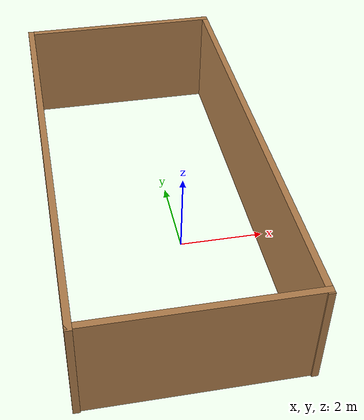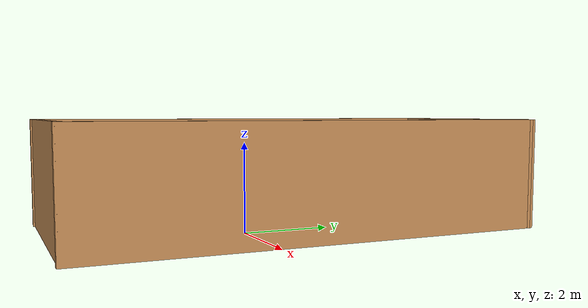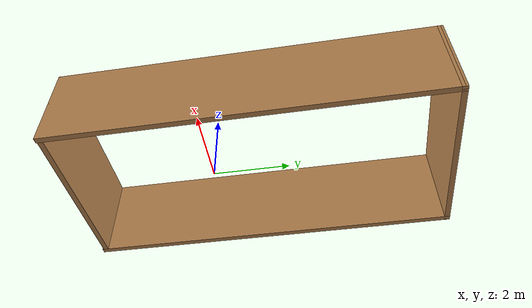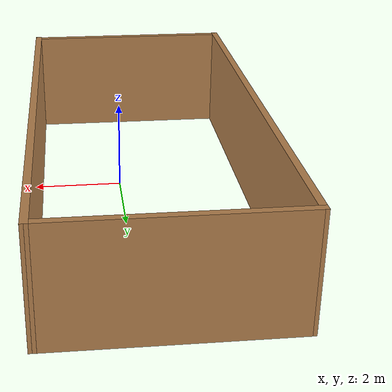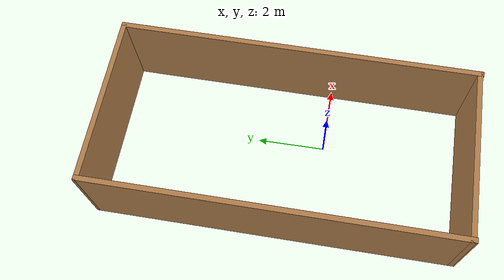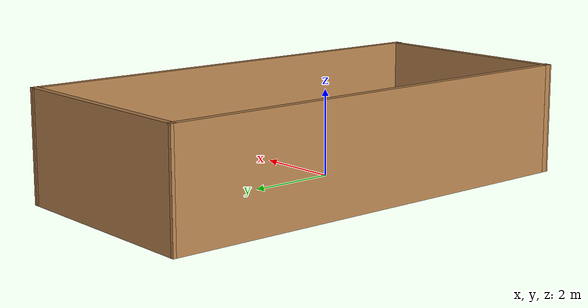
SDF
<?xml version='1.0'?>
<sdf version='1.7'>
  <model name='Untitled'>
    <pose>-0.51238 1.07778 0 0 -0 0</pose>
    <link name='Wall_0'>
      <collision name='Wall_0_Collision'>
        <geometry>
          <box>
            <size>10.5224 0.15 2.5</size>
          </box>
        </geometry>
        <pose>0 0 1.25 0 -0 0</pose>
      </collision>
      <visual name='Wall_0_Visual'>
        <pose>0 0 1.25 0 -0 0</pose>
        <geometry>
          <box>
            <size>10.5224 0.15 2.5</size>
          </box>
        </geometry>
        <material>
          <script>
            <uri>file://media/materials/scripts/gazebo.material</uri>
            <name>Gazebo/Wood</name>
          </script>
          <ambient>1 1 1 1</ambient>
        </material>
        <meta>
          <layer>0</layer>
        </meta>
      </visual>
      <pose>-2.42499 0.006101 0 0 -0 1.56552</pose>
    </link>
    <link name='Wall_1'>
      <collision name='Wall_1_Collision'>
        <geometry>
          <box>
            <size>5 0.15 2.5</size>
          </box>
        </geometry>
        <pose>0 0 1.25 0 -0 0</pose>
      </collision>
      <visual name='Wall_1_Visual'>
        <pose>0 0 1.25 0 -0 0</pose>
        <geometry>
          <box>
            <size>5 0.15 2.5</size>
          </box>
        </geometry>
        <material>
          <script>
            <uri>file://media/materials/scripts/gazebo.material</uri>
            <name>Gazebo/Wood</name>
          </script>
          <ambient>1 1 1 1</ambient>
        </material>
        <meta>
          <layer>0</layer>
        </meta>
      </visual>
      <pose>0.027373 5.18612 0 0 -0 -0.002516</pose>
    </link>
    <link name='Wall_2'>
      <collision name='Wall_2_Collision'>
        <geometry>
          <box>
            <size>10.5224 0.15 2.5</size>
          </box>
        </geometry>
        <pose>0 0 1.25 0 -0 0</pose>
      </collision>
      <visual name='Wall_2_Visual'>
        <pose>0 0 1.25 0 -0 0</pose>
        <geometry>
          <box>
            <size>10.5224 0.15 2.5</size>
          </box>
        </geometry>
        <material>
          <script>
            <uri>file://media/materials/scripts/gazebo.material</uri>
            <name>Gazebo/Wood</name>
          </script>
          <ambient>1 1 1 1</ambient>
        </material>
        <meta>
          <layer>0</layer>
        </meta>
      </visual>
      <pose>2.42499 -0.006102 0 0 -0 -1.57607</pose>
    </link>
    <link name='Wall_3'>
      <collision name='Wall_3_Collision'>
        <geometry>
          <box>
            <size>5 0.15 2.5</size>
          </box>
        </geometry>
        <pose>0 0 1.25 0 -0 0</pose>
      </collision>
      <visual name='Wall_3_Visual'>
        <pose>0 0 1.25 0 -0 0</pose>
        <geometry>
          <box>
            <size>5 0.15 2.5</size>
          </box>
        </geometry>
        <material>
          <script>
            <uri>file://media/materials/scripts/gazebo.material</uri>
            <name>Gazebo/Wood</name>
          </script>
          <ambient>1 1 1 1</ambient>
        </material>
        <meta>
          <layer>0</layer>
        </meta>
      </visual>
      <pose>-0.027373 -5.15094 0 0 -0 3.13908</pose>
    </link>
    <static>1</static>
  </model>
</sdf>
